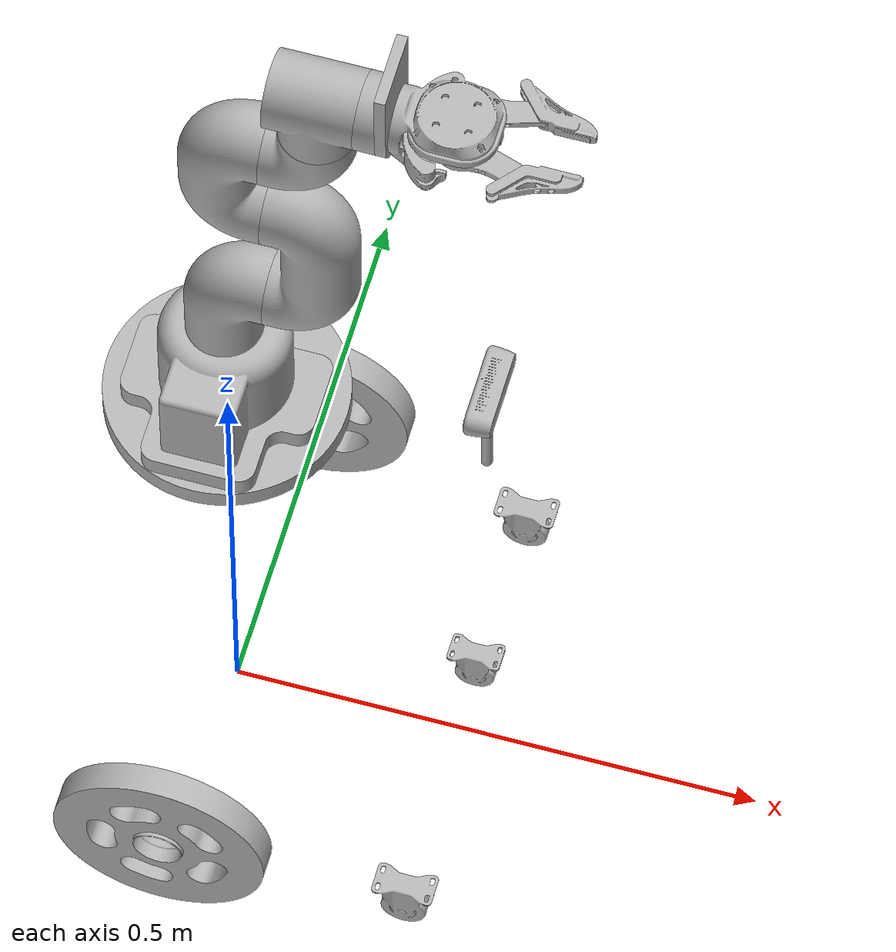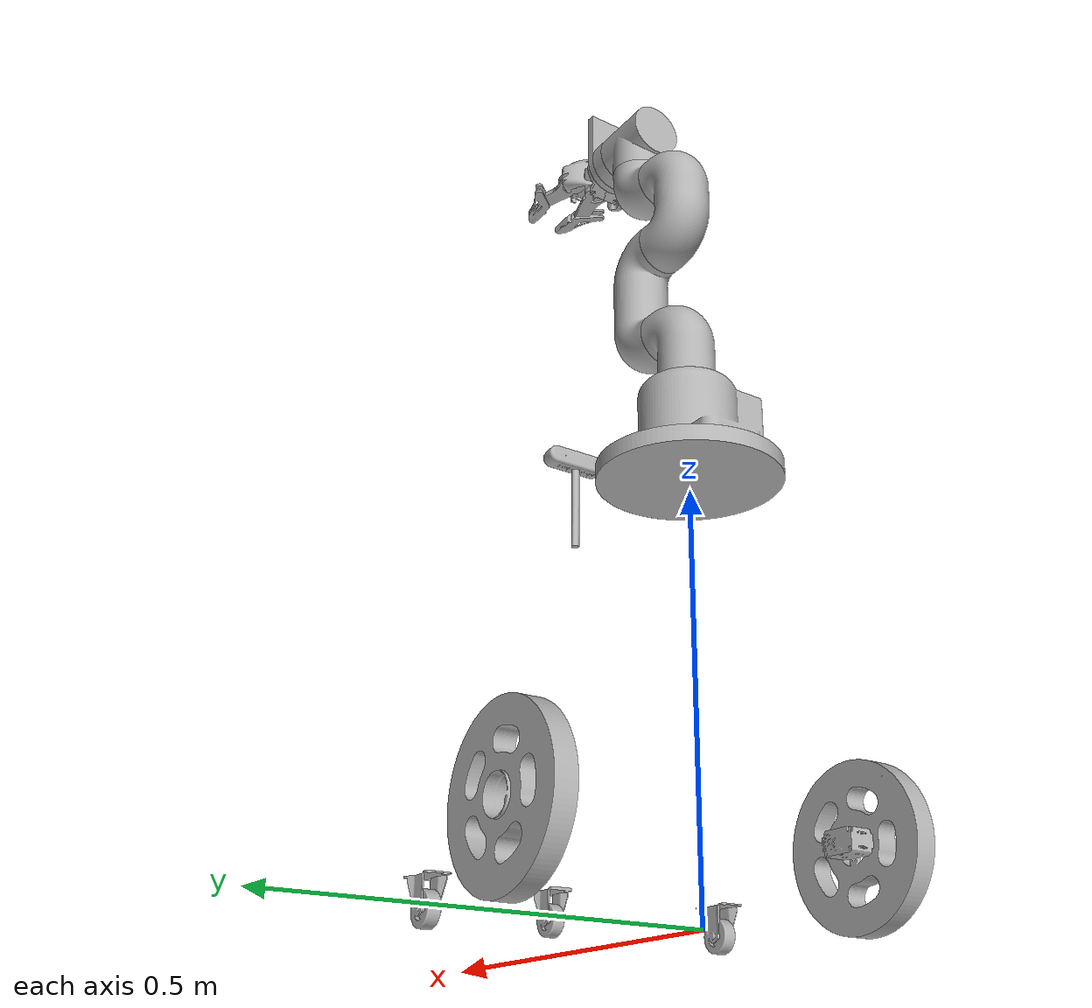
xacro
<?xml version="1.0" ?>
<robot name="turtlebot3" xmlns:xacro="http://www.ros.org/wiki/xacro">

<material name="silver">
  <color rgba="0.700 0.700 0.700 1.000"/>
</material>

<link name="base_footprint"/>

<joint name="base_joint" type="fixed">
  <parent link="base_footprint"/>
  <child link="base_link"/>
  <origin xyz="0.0 0.0 0.010" rpy="0 0 0"/>
</joint>

<link name="base_link">
  <inertial>
    <origin xyz="8.368053381880458e-07 -1.7610424648219707e-05 0.27252999856366134" rpy="0 0 0"/>
    <mass value="8.34475627832778"/>
    <inertia ixx="0.41971" iyy="0.457952" izz="0.39007" ixy="-1.6e-05" iyz="-2e-06" ixz="-0.0"/>
  </inertial>
  <visual>
    <origin xyz="0 0 0" rpy="0 0 0"/>
    <geometry>
      <mesh filename="file://$(find turtlebot3_description)/meshes/base_link.stl" scale="0.001 0.001 0.001"/>
    </geometry>
    <material name="silver"/>
  </visual>
  <collision>
    <origin xyz="0 0 0" rpy="0 0 0"/>
    <geometry>
      <mesh filename="file://$(find turtlebot3_description)/meshes/base_link.stl" scale="0.001 0.001 0.001"/>
    </geometry>
  </collision>
</link>

<link name="caster_1">
  <inertial>
    <origin xyz="-0.02857352949264516 -0.01151471005681412 -0.03043828110848307" rpy="0 0 0"/>
    <mass value="0.18931422070235698"/>
    <inertia ixx="5.5e-05" iyy="7.4e-05" izz="3.3e-05" ixy="-0.0" iyz="0.0" ixz="0.0"/>
  </inertial>
  <visual>
    <origin xyz="-0.25 -0.2169 -0.058" rpy="0 0 0"/>
    <geometry>
      <mesh filename="file://$(find turtlebot3_description)/meshes/caster_1.stl" scale="0.001 0.001 0.001"/>
    </geometry>
    <material name="silver"/>
  </visual>
  <collision>
    <origin xyz="-0.25 -0.2169 -0.058" rpy="0 0 0"/>
    <geometry>
      <mesh filename="file://$(find turtlebot3_description)/meshes/caster_1.stl" scale="0.001 0.001 0.001"/>
    </geometry>
  </collision>
</link>

<link name="caster_2">
  <inertial>
    <origin xyz="-0.028573529492625066 0.011514701707892594 -0.03043828110848334" rpy="0 0 0"/>
    <mass value="0.18931422070235698"/>
    <inertia ixx="5.5e-05" iyy="7.4e-05" izz="3.3e-05" ixy="-0.0" iyz="0.0" ixz="0.0"/>
  </inertial>
  <visual>
    <origin xyz="-0.25 0.2169 -0.058" rpy="0 0 0"/>
    <geometry>
      <mesh filename="file://$(find turtlebot3_description)/meshes/caster_2.stl" scale="0.001 0.001 0.001"/>
    </geometry>
    <material name="silver"/>
  </visual>
  <collision>
    <origin xyz="-0.25 0.2169 -0.058" rpy="0 0 0"/>
    <geometry>
      <mesh filename="file://$(find turtlebot3_description)/meshes/caster_2.stl" scale="0.001 0.001 0.001"/>
    </geometry>
  </collision>
</link>

<link name="caster_3">
  <inertial>
    <origin xyz="0.028573529330904346 0.01151470170789251 -0.0304382811084827" rpy="0 0 0"/>
    <mass value="0.18931422070235698"/>
    <inertia ixx="5.5e-05" iyy="7.4e-05" izz="3.3e-05" ixy="-0.0" iyz="0.0" ixz="0.0"/>
  </inertial>
  <visual>
    <origin xyz="0.25 0.2169 -0.058" rpy="0 0 0"/>
    <geometry>
      <mesh filename="file://$(find turtlebot3_description)/meshes/caster_3.stl" scale="0.001 0.001 0.001"/>
    </geometry>
    <material name="silver"/>
  </visual>
  <collision>
    <origin xyz="0.25 0.2169 -0.058" rpy="0 0 0"/>
    <geometry>
      <mesh filename="file://$(find turtlebot3_description)/meshes/caster_3.stl" scale="0.001 0.001 0.001"/>
    </geometry>
  </collision>
</link>

<link name="caster_4">
  <inertial>
    <origin xyz="0.02857352933088425 -0.01151471005681412 -0.030438281108482977" rpy="0 0 0"/>
    <mass value="0.18931422070235698"/>
    <inertia ixx="5.5e-05" iyy="7.4e-05" izz="3.3e-05" ixy="-0.0" iyz="0.0" ixz="0.0"/>
  </inertial>
  <visual>
    <origin xyz="0.25 -0.2169 -0.058" rpy="0 0 0"/>
    <geometry>
      <mesh filename="file://$(find turtlebot3_description)/meshes/caster_4.stl" scale="0.001 0.001 0.001"/>
    </geometry>
    <material name="silver"/>
  </visual>
  <collision>
    <origin xyz="0.25 -0.2169 -0.058" rpy="0 0 0"/>
    <geometry>
      <mesh filename="file://$(find turtlebot3_description)/meshes/caster_4.stl" scale="0.001 0.001 0.001"/>
    </geometry>
  </collision>
</link>

<link name="XL430_base_right">
  <inertial>
    <origin xyz="0.015671495929223667 -0.00632193052184804 0.014483637367895638" rpy="0 0 0"/>
    <mass value="0.3239556630537195"/>
    <inertia ixx="5e-05" iyy="7.9e-05" izz="8.6e-05" ixy="0.0" iyz="0.0" ixz="-0.0"/>
  </inertial>
  <visual>
    <origin xyz="0.028 0.198 -0.0855" rpy="0 0 0"/>
    <geometry>
      <mesh filename="file://$(find turtlebot3_description)/meshes/XL430_base_right.stl" scale="0.001 0.001 0.001"/>
    </geometry>
    <material name="silver"/>
  </visual>
  <collision>
    <origin xyz="0.028 0.198 -0.0855" rpy="0 0 0"/>
    <geometry>
      <mesh filename="file://$(find turtlebot3_description)/meshes/XL430_base_right.stl" scale="0.001 0.001 0.001"/>
    </geometry>
  </collision>
</link>

<link name="XL430_motor_right">
  <inertial>
    <origin xyz="-3.045443770730309e-06 -0.002385176775222958 6.646072581162343e-14" rpy="0 0 0"/>
    <mass value="0.011770865349524429"/>
    <inertia ixx="0.0" iyy="1e-06" izz="0.0" ixy="0.0" iyz="0.0" ixz="-0.0"/>
  </inertial>
  <visual>
    <origin xyz="-0.0003 0.2188 -0.1" rpy="0 0 0"/>
    <geometry>
      <mesh filename="file://$(find turtlebot3_description)/meshes/XL430_motor_right.stl" scale="0.001 0.001 0.001"/>
    </geometry>
    <material name="silver"/>
  </visual>
  <collision>
    <origin xyz="-0.0003 0.2188 -0.1" rpy="0 0 0"/>
    <geometry>
      <mesh filename="file://$(find turtlebot3_description)/meshes/XL430_motor_right.stl" scale="0.001 0.001 0.001"/>
    </geometry>
  </collision>
</link>

<link name="wheel_right">
  <inertial>
    <origin xyz="-0.005656851380657197 -0.013437856519626423 -0.005656982696146395" rpy="0 0 0"/>
    <mass value="5.068160827641181"/>
    <inertia ixx="0.014881" iyy="0.029142" izz="0.014881" ixy="0.0" iyz="0.0" ixz="-0.0"/>
  </inertial>
  <visual>
    <origin xyz="-0.005957 0.2233 -0.105657" rpy="0 0 0"/>
    <geometry>
      <mesh filename="file://$(find turtlebot3_description)/meshes/wheel_right.stl" scale="0.001 0.001 0.001"/>
    </geometry>
    <material name="silver"/>
  </visual>
  <collision>
    <origin xyz="-0.005957 0.2233 -0.105657" rpy="0 0 0"/>
    <geometry>
      <mesh filename="file://$(find turtlebot3_description)/meshes/wheel_right.stl" scale="0.001 0.001 0.001"/>
    </geometry>
  </collision>
</link>

<link name="plate">
  <inertial>
    <origin xyz="2.349014429479716e-17 2.217469621428852e-14 0.009999999999990572" rpy="0 0 0"/>
    <mass value="6.078748022419618"/>
    <inertia ixx="0.018932" iyy="0.018932" izz="0.037458" ixy="0.0" iyz="0.0" ixz="0.0"/>
  </inertial>
  <visual>
    <origin xyz="-0.0 0.0 -0.501" rpy="0 0 0"/>
    <geometry>
      <mesh filename="file://$(find turtlebot3_description)/meshes/plate.stl" scale="0.001 0.001 0.001"/>
    </geometry>
    <material name="silver"/>
  </visual>
  <collision>
    <origin xyz="-0.0 0.0 -0.501" rpy="0 0 0"/>
    <geometry>
      <mesh filename="file://$(find turtlebot3_description)/meshes/plate.stl" scale="0.001 0.001 0.001"/>
    </geometry>
  </collision>
</link>

<link name="cobot_body">
  <inertial>
    <origin xyz="-1.3994638513012427e-08 -0.013751224256373267 0.04886454507233462" rpy="0 0 0"/>
    <mass value="12.899764355948896"/>
    <inertia ixx="0.033823" iyy="0.028162" izz="0.035033" ixy="0.0" iyz="-0.000755" ixz="0.0"/>
  </inertial>
  <visual>
    <origin xyz="-0.0 -0.0 -0.521" rpy="0 0 0"/>
    <geometry>
      <mesh filename="file://$(find turtlebot3_description)/meshes/cobot_body.stl" scale="0.001 0.001 0.001"/>
    </geometry>
    <material name="silver"/>
  </visual>
  <collision>
    <origin xyz="-0.0 -0.0 -0.521" rpy="0 0 0"/>
    <geometry>
      <mesh filename="file://$(find turtlebot3_description)/meshes/cobot_body.stl" scale="0.001 0.001 0.001"/>
    </geometry>
  </collision>
</link>

<link name="baseArm">
  <inertial>
    <origin xyz="0.0068967662247284124 2.2561127161268677e-14 0.05549018686904705" rpy="0 0 0"/>
    <mass value="3.4735206294395446"/>
    <inertia ixx="0.004461" iyy="0.004757" izz="0.002424" ixy="0.0" iyz="0.0" ixz="-0.000777"/>
  </inertial>
  <visual>
    <origin xyz="0.0 -0.0 -0.631" rpy="0 0 0"/>
    <geometry>
      <mesh filename="file://$(find turtlebot3_description)/meshes/baseArm.stl" scale="0.001 0.001 0.001"/>
    </geometry>
    <material name="silver"/>
  </visual>
  <collision>
    <origin xyz="0.0 -0.0 -0.631" rpy="0 0 0"/>
    <geometry>
      <mesh filename="file://$(find turtlebot3_description)/meshes/baseArm.stl" scale="0.001 0.001 0.001"/>
    </geometry>
  </collision>
</link>

<link name="lowerArm">
  <inertial>
    <origin xyz="0.03690658575566909 2.2563486026873027e-14 0.06799999999999196" rpy="0 0 0"/>
    <mass value="5.91988968680626"/>
    <inertia ixx="0.0188" iyy="0.019335" izz="0.004161" ixy="0.0" iyz="0.0" ixz="0.0"/>
  </inertial>
  <visual>
    <origin xyz="-0.045 -0.0 -0.716" rpy="0 0 0"/>
    <geometry>
      <mesh filename="file://$(find turtlebot3_description)/meshes/lowerArm.stl" scale="0.001 0.001 0.001"/>
    </geometry>
    <material name="silver"/>
  </visual>
  <collision>
    <origin xyz="-0.045 -0.0 -0.716" rpy="0 0 0"/>
    <geometry>
      <mesh filename="file://$(find turtlebot3_description)/meshes/lowerArm.stl" scale="0.001 0.001 0.001"/>
    </geometry>
  </collision>
</link>

<link name="upperArm">
  <inertial>
    <origin xyz="-0.035022688252996176 2.6167507160751738e-14 0.04949999999999111" rpy="0 0 0"/>
    <mass value="4.802107093668197"/>
    <inertia ixx="0.01014" iyy="0.010584" izz="0.003386" ixy="-0.0" iyz="-0.0" ixz="-0.0"/>
  </inertial>
  <visual>
    <origin xyz="-0.045 -0.0 -0.852" rpy="0 0 0"/>
    <geometry>
      <mesh filename="file://$(find turtlebot3_description)/meshes/upperArm.stl" scale="0.001 0.001 0.001"/>
    </geometry>
    <material name="silver"/>
  </visual>
  <collision>
    <origin xyz="-0.045 -0.0 -0.852" rpy="0 0 0"/>
    <geometry>
      <mesh filename="file://$(find turtlebot3_description)/meshes/upperArm.stl" scale="0.001 0.001 0.001"/>
    </geometry>
  </collision>
</link>

<link name="pitchArm">
  <inertial>
    <origin xyz="0.0344238728691882 2.9930072914790985e-14 0.010576127130799029" rpy="0 0 0"/>
    <mass value="2.265107015236222"/>
    <inertia ixx="0.001595" iyy="0.001803" izz="0.001595" ixy="-0.0" iyz="-0.0" ixz="-0.000324"/>
  </inertial>
  <visual>
    <origin xyz="-0.045 -0.0 -0.951" rpy="0 0 0"/>
    <geometry>
      <mesh filename="file://$(find turtlebot3_description)/meshes/pitchArm.stl" scale="0.001 0.001 0.001"/>
    </geometry>
    <material name="silver"/>
  </visual>
  <collision>
    <origin xyz="-0.045 -0.0 -0.951" rpy="0 0 0"/>
    <geometry>
      <mesh filename="file://$(find turtlebot3_description)/meshes/pitchArm.stl" scale="0.001 0.001 0.001"/>
    </geometry>
  </collision>
</link>

<link name="rollArm">
  <inertial>
    <origin xyz="-4.052314039881821e-15 3.104263161282912e-14 0.04211669650612482" rpy="0 0 0"/>
    <mass value="3.029827579494103"/>
    <inertia ixx="0.0025" iyy="0.002976" izz="0.002441" ixy="0.0" iyz="-0.0" ixz="0.0"/>
  </inertial>
  <visual>
    <origin xyz="-0.09 -0.0 -0.996" rpy="0 0 0"/>
    <geometry>
      <mesh filename="file://$(find turtlebot3_description)/meshes/rollArm.stl" scale="0.001 0.001 0.001"/>
    </geometry>
    <material name="silver"/>
  </visual>
  <collision>
    <origin xyz="-0.09 -0.0 -0.996" rpy="0 0 0"/>
    <geometry>
      <mesh filename="file://$(find turtlebot3_description)/meshes/rollArm.stl" scale="0.001 0.001 0.001"/>
    </geometry>
  </collision>
</link>

<link name="gripperArm">
  <inertial>
    <origin xyz="0.009999999999995929 3.104852866283627e-14 -9.325873406851315e-15" rpy="0 0 0"/>
    <mass value="0.6042068071016569"/>
    <inertia ixx="0.00037" iyy="0.000205" izz="0.000205" ixy="0.0" iyz="0.0" ixz="-0.0"/>
  </inertial>
  <visual>
    <origin xyz="-0.13 -0.0 -1.046" rpy="0 0 0"/>
    <geometry>
      <mesh filename="file://$(find turtlebot3_description)/meshes/gripperArm.stl" scale="0.001 0.001 0.001"/>
    </geometry>
    <material name="silver"/>
  </visual>
  <collision>
    <origin xyz="-0.13 -0.0 -1.046" rpy="0 0 0"/>
    <geometry>
      <mesh filename="file://$(find turtlebot3_description)/meshes/gripperArm.stl" scale="0.001 0.001 0.001"/>
    </geometry>
  </collision>
</link>

<link name="cobot_camera">
  <inertial>
    <origin xyz="0.004999999999995952 3.105530767256797e-14 0.02345781668822733" rpy="0 0 0"/>
    <mass value="0.5631767017754145"/>
    <inertia ixx="0.000724" iyy="0.000514" izz="0.000219" ixy="0.0" iyz="-0.0" ixz="-0.0"/>
  </inertial>
  <visual>
    <origin xyz="-0.15 -0.0 -1.046" rpy="0 0 0"/>
    <geometry>
      <mesh filename="file://$(find turtlebot3_description)/meshes/cobot_camera.stl" scale="0.001 0.001 0.001"/>
    </geometry>
    <material name="silver"/>
  </visual>
  <collision>
    <origin xyz="-0.15 -0.0 -1.046" rpy="0 0 0"/>
    <geometry>
      <mesh filename="file://$(find turtlebot3_description)/meshes/cobot_camera.stl" scale="0.001 0.001 0.001"/>
    </geometry>
  </collision>
</link>

<link name="gripper_base">
  <inertial>
    <origin xyz="0.035566484314994706 -0.00017560554917522554 0.00832682194458001" rpy="0 0 0"/>
    <mass value="0.5510932173775136"/>
    <inertia ixx="0.000508" iyy="0.00049" izz="0.000702" ixy="0.0" iyz="0.0" ixz="-0.000104"/>
  </inertial>
  <visual>
    <origin xyz="-0.16 -0.0 -1.046" rpy="0 0 0"/>
    <geometry>
      <mesh filename="file://$(find turtlebot3_description)/meshes/gripper_base.stl" scale="0.001 0.001 0.001"/>
    </geometry>
    <material name="silver"/>
  </visual>
  <collision>
    <origin xyz="-0.16 -0.0 -1.046" rpy="0 0 0"/>
    <geometry>
      <mesh filename="file://$(find turtlebot3_description)/meshes/gripper_base.stl" scale="0.001 0.001 0.001"/>
    </geometry>
  </collision>
</link>

<link name="gripper_left3">
  <inertial>
    <origin xyz="0.015990426629757803 -0.012967523057076307 0.0034753903195710034" rpy="0 0 0"/>
    <mass value="0.09059526730883281"/>
    <inertia ixx="1.8e-05" iyy="3.3e-05" izz="5e-05" ixy="1.8e-05" iyz="0.0" ixz="-0.0"/>
  </inertial>
  <visual>
    <origin xyz="-0.22039 0.01846 -1.049642" rpy="0 0 0"/>
    <geometry>
      <mesh filename="file://$(find turtlebot3_description)/meshes/gripper_left3.stl" scale="0.001 0.001 0.001"/>
    </geometry>
    <material name="silver"/>
  </visual>
  <collision>
    <origin xyz="-0.22039 0.01846 -1.049642" rpy="0 0 0"/>
    <geometry>
      <mesh filename="file://$(find turtlebot3_description)/meshes/gripper_left3.stl" scale="0.001 0.001 0.001"/>
    </geometry>
  </collision>
</link>

<link name="gripper_left1">
  <inertial>
    <origin xyz="0.011053309239173692 -0.005253691764326537 0.00013660803927972864" rpy="0 0 0"/>
    <mass value="0.09307370524687981"/>
    <inertia ixx="1e-05" iyy="3.5e-05" izz="4.2e-05" ixy="-1.3e-05" iyz="0.0" ixz="0.0"/>
  </inertial>
  <visual>
    <origin xyz="-0.271438 0.051465 -1.053142" rpy="0 0 0"/>
    <geometry>
      <mesh filename="file://$(find turtlebot3_description)/meshes/gripper_left1.stl" scale="0.001 0.001 0.001"/>
    </geometry>
    <material name="silver"/>
  </visual>
  <collision>
    <origin xyz="-0.271438 0.051465 -1.053142" rpy="0 0 0"/>
    <geometry>
      <mesh filename="file://$(find turtlebot3_description)/meshes/gripper_left1.stl" scale="0.001 0.001 0.001"/>
    </geometry>
  </collision>
</link>

<link name="gripper_right3">
  <inertial>
    <origin xyz="0.015990425593987917 0.012967524435841548 0.0035248809278738413" rpy="0 0 0"/>
    <mass value="0.09059526730883281"/>
    <inertia ixx="1.8e-05" iyy="3.3e-05" izz="5e-05" ixy="-1.8e-05" iyz="0.0" ixz="0.0"/>
  </inertial>
  <visual>
    <origin xyz="-0.22039 -0.01822 -1.049642" rpy="0 0 0"/>
    <geometry>
      <mesh filename="file://$(find turtlebot3_description)/meshes/gripper_right3.stl" scale="0.001 0.001 0.001"/>
    </geometry>
    <material name="silver"/>
  </visual>
  <collision>
    <origin xyz="-0.22039 -0.01822 -1.049642" rpy="0 0 0"/>
    <geometry>
      <mesh filename="file://$(find turtlebot3_description)/meshes/gripper_right3.stl" scale="0.001 0.001 0.001"/>
    </geometry>
  </collision>
</link>

<link name="gripper_right1">
  <inertial>
    <origin xyz="0.011053308203403556 0.005253693143092229 -0.00013633679183122638" rpy="0 0 0"/>
    <mass value="0.09307370524687981"/>
    <inertia ixx="1e-05" iyy="3.5e-05" izz="4.2e-05" ixy="1.3e-05" iyz="0.0" ixz="-0.0"/>
  </inertial>
  <visual>
    <origin xyz="-0.271438 -0.051225 -1.053142" rpy="0 0 0"/>
    <geometry>
      <mesh filename="file://$(find turtlebot3_description)/meshes/gripper_right1.stl" scale="0.001 0.001 0.001"/>
    </geometry>
    <material name="silver"/>
  </visual>
  <collision>
    <origin xyz="-0.271438 -0.051225 -1.053142" rpy="0 0 0"/>
    <geometry>
      <mesh filename="file://$(find turtlebot3_description)/meshes/gripper_right1.stl" scale="0.001 0.001 0.001"/>
    </geometry>
  </collision>
</link>

<link name="camera_link">
  <inertial>
    <origin xyz="0.0015201693083259915 -5.299270958027507e-07 0.012451799923456464" rpy="0 0 0"/>
    <mass value="0.3783774808035141"/>
    <inertia ixx="0.000238" iyy="3.5e-05" izz="0.00024" ixy="-0.0" iyz="0.0" ixz="0.0"/>
  </inertial>
  <visual>
    <origin xyz="-0.24 -0.0 -0.611" rpy="0 0 0"/>
    <geometry>
      <mesh filename="file://$(find turtlebot3_description)/meshes/Intel_Realsense_D435.stl" scale="0.001 0.001 0.001"/>
    </geometry>
    <material name="silver"/>
  </visual>
  <collision>
    <origin xyz="-0.24 -0.0 -0.611" rpy="0 0 0"/>
    <geometry>
      <mesh filename="file://$(find turtlebot3_description)/meshes/Intel_Realsense_D435.stl" scale="0.001 0.001 0.001"/>
    </geometry>
  </collision>
</link>

<link name="camera_stand">
  <inertial>
    <origin xyz="8.326672684688674e-17 2.405039069677821e-14 0.05499999999999039" rpy="0 0 0"/>
    <mass value="0.06781913140936957"/>
    <inertia ixx="6.9e-05" iyy="6.9e-05" izz="1e-06" ixy="-0.0" iyz="-0.0" ixz="-0.0"/>
  </inertial>
  <visual>
    <origin xyz="-0.24 0.0 -0.501" rpy="0 0 0"/>
    <geometry>
      <mesh filename="file://$(find turtlebot3_description)/meshes/camera_stand.stl" scale="0.001 0.001 0.001"/>
    </geometry>
    <material name="silver"/>
  </visual>
  <collision>
    <origin xyz="-0.24 0.0 -0.501" rpy="0 0 0"/>
    <geometry>
      <mesh filename="file://$(find turtlebot3_description)/meshes/camera_stand.stl" scale="0.001 0.001 0.001"/>
    </geometry>
  </collision>
</link>

<link name="XL430_base_left">
  <inertial>
    <origin xyz="0.015671495929223758 0.006321930521842017 0.014516362632086596" rpy="0 0 0"/>
    <mass value="0.3239556630537195"/>
    <inertia ixx="5e-05" iyy="7.9e-05" izz="8.6e-05" ixy="-0.0" iyz="0.0" ixz="0.0"/>
  </inertial>
  <visual>
    <origin xyz="0.028 -0.198 -0.0855" rpy="0 0 0"/>
    <geometry>
      <mesh filename="file://$(find turtlebot3_description)/meshes/XL430_base_left.stl" scale="0.001 0.001 0.001"/>
    </geometry>
    <material name="silver"/>
  </visual>
  <collision>
    <origin xyz="0.028 -0.198 -0.0855" rpy="0 0 0"/>
    <geometry>
      <mesh filename="file://$(find turtlebot3_description)/meshes/XL430_base_left.stl" scale="0.001 0.001 0.001"/>
    </geometry>
  </collision>
</link>

<link name="XL430_motor_left">
  <inertial>
    <origin xyz="-3.0454437706458498e-06 0.0023851767752167963 -8.416878305439468e-14" rpy="0 0 0"/>
    <mass value="0.011770865349524429"/>
    <inertia ixx="0.0" iyy="1e-06" izz="0.0" ixy="-0.0" iyz="0.0" ixz="0.0"/>
  </inertial>
  <visual>
    <origin xyz="-0.0003 -0.2188 -0.1" rpy="0 0 0"/>
    <geometry>
      <mesh filename="file://$(find turtlebot3_description)/meshes/XL430_motor_left.stl" scale="0.001 0.001 0.001"/>
    </geometry>
    <material name="silver"/>
  </visual>
  <collision>
    <origin xyz="-0.0003 -0.2188 -0.1" rpy="0 0 0"/>
    <geometry>
      <mesh filename="file://$(find turtlebot3_description)/meshes/XL430_motor_left.stl" scale="0.001 0.001 0.001"/>
    </geometry>
  </collision>
</link>

<link name="wheel_left">
  <inertial>
    <origin xyz="-0.00565685138065711 0.01343785651962029 -0.0056570173038905935" rpy="0 0 0"/>
    <mass value="5.068160827641181"/>
    <inertia ixx="0.014881" iyy="0.029142" izz="0.014881" ixy="-0.0" iyz="0.0" ixz="0.0"/>
  </inertial>
  <visual>
    <origin xyz="-0.005957 -0.2233 -0.105657" rpy="0 0 0"/>
    <geometry>
      <mesh filename="file://$(find turtlebot3_description)/meshes/wheel_left.stl" scale="0.001 0.001 0.001"/>
    </geometry>
    <material name="silver"/>
  </visual>
  <collision>
    <origin xyz="-0.005957 -0.2233 -0.105657" rpy="0 0 0"/>
    <geometry>
      <mesh filename="file://$(find turtlebot3_description)/meshes/wheel_left.stl" scale="0.001 0.001 0.001"/>
    </geometry>
  </collision>
</link>

<joint name="Rigid 5" type="fixed">
  <origin xyz="0.25 0.2169 0.058" rpy="0 0 0"/>
  <parent link="base_link"/>
  <child link="caster_1"/>
</joint>

<joint name="Rigid 6" type="fixed">
  <origin xyz="0.25 -0.2169 0.058" rpy="0 0 0"/>
  <parent link="base_link"/>
  <child link="caster_2"/>
</joint>

<joint name="Rigid 7" type="fixed">
  <origin xyz="-0.25 -0.2169 0.058" rpy="0 0 0"/>
  <parent link="base_link"/>
  <child link="caster_3"/>
</joint>

<joint name="Rigid 8" type="fixed">
  <origin xyz="-0.25 0.2169 0.058" rpy="0 0 0"/>
  <parent link="base_link"/>
  <child link="caster_4"/>
</joint>

<joint name="Rigid 11" type="fixed">
  <origin xyz="-0.028 -0.198 0.0855" rpy="0 0 0"/>
  <parent link="base_link"/>
  <child link="XL430_base_right"/>
</joint>

<joint name="wheel_left_joint" type="continuous">
  <origin xyz="0.0283 0.0208 0.0145" rpy="0 0 0"/>
  <parent link="XL430_base_left"/>
  <child link="XL430_motor_left"/>
  <axis xyz="0.0 1.0 -0.0"/>
</joint>

<joint name="wheel_right_joint" type="continuous">
  <origin xyz="0.0283 -0.0208 0.0145" rpy="0 0 0"/>
  <parent link="XL430_base_right"/>
  <child link="XL430_motor_right"/>
  <axis xyz="-0.0 -1.0 0.0"/>
</joint>

<joint name="Rigid 14" type="fixed">
  <origin xyz="0.005657 -0.0045 0.005657" rpy="0 0 0"/>
  <parent link="XL430_motor_right"/>
  <child link="wheel_right"/>
</joint>

<joint name="Rigid 21" type="fixed">
  <origin xyz="0.0 0.0 0.501" rpy="0 0 0"/>
  <parent link="base_link"/>
  <child link="plate"/>
</joint>

<joint name="Rigid 23" type="fixed">
  <origin xyz="0.0 0.0 0.02" rpy="0 0 0"/>
  <parent link="plate"/>
  <child link="cobot_body"/>
</joint>

<joint name="Revolute 1" type="revolute">
  <origin xyz="-0.0 0.0 0.11" rpy="0 0 0"/>
  <parent link="cobot_body"/>
  <child link="baseArm"/>
  <axis xyz="-0.0 -0.0 1.0"/>
  <limit upper="2.792527" lower="-2.792527" effort="100" velocity="100"/>
</joint>

<joint name="Revolute 2" type="revolute">
  <origin xyz="0.045 0.0 0.085" rpy="0 0 0"/>
  <parent link="baseArm"/>
  <child link="lowerArm"/>
  <axis xyz="1.0 -0.0 0.0"/>
  <limit upper="2.792527" lower="-2.792527" effort="100" velocity="100"/>
</joint>

<joint name="Revolute 3" type="revolute">
  <origin xyz="0.0 0.0 0.136" rpy="0 0 0"/>
  <parent link="lowerArm"/>
  <child link="upperArm"/>
  <axis xyz="-1.0 0.0 -0.0"/>
  <limit upper="2.792527" lower="-2.792527" effort="100" velocity="100"/>
</joint>

<joint name="Revolute 4" type="revolute">
  <origin xyz="0.0 0.0 0.099" rpy="0 0 0"/>
  <parent link="upperArm"/>
  <child link="pitchArm"/>
  <axis xyz="1.0 -0.0 -0.0"/>
  <limit upper="2.792527" lower="-2.792527" effort="100" velocity="100"/>
</joint>

<joint name="Revolute 5" type="revolute">
  <origin xyz="0.045 0.0 0.045" rpy="0 0 0"/>
  <parent link="pitchArm"/>
  <child link="rollArm"/>
  <axis xyz="0.0 0.0 1.0"/>
  <limit upper="2.792527" lower="-2.792527" effort="100" velocity="100"/>
</joint>

<joint name="Revolute 6" type="revolute">
  <origin xyz="0.04 0.0 0.05" rpy="0 0 0"/>
  <parent link="rollArm"/>
  <child link="gripperArm"/>
  <axis xyz="1.0 -0.0 0.0"/>
  <limit upper="2.792527" lower="-2.792527" effort="100" velocity="100"/>
</joint>

<joint name="Rigid 30" type="fixed">
  <origin xyz="0.02 0.0 0.0" rpy="0 0 0"/>
  <parent link="gripperArm"/>
  <child link="cobot_camera"/>
</joint>

<joint name="Rigid 31" type="fixed">
  <origin xyz="0.01 0.0 0.0" rpy="0 0 0"/>
  <parent link="cobot_camera"/>
  <child link="gripper_base"/>
</joint>

<joint name="gripper_controller" type="revolute">
  <origin xyz="0.06039 0.01822 0.003642" rpy="0 0 -0.42"/> <!-- change rpy y to -0.42-->
  <parent link="gripper_base"/>
  <child link="gripper_right3"/>
  <axis xyz="-0.0 -0.0 -1.0"/>
  <limit upper="0.3" lower="-0.7" effort="100" velocity="100"/> <!-- change upper to 0.3 and lower to -0.7-->
</joint>

<joint name="Revolute 36" type="revolute">
  <origin xyz="0.051048 0.033005 0.0035" rpy="0 0 0.42"/> <!-- change rpy y to 0.42-->
  <parent link="gripper_right3"/>
  <child link="gripper_right1"/>
  <axis xyz="0.0 -0.0 1.0"/>
  <limit upper="0.7" lower="-0.3" effort="100" velocity="100"/> <!-- change upper to 0.7 and lower to -0.3-->
  <mimic joint="gripper_controller" multiplier="1" offset="0"/> <!-- add mimic and change multiplier to -1-->
</joint>

<joint name="Revolute 33" type="revolute">
  <origin xyz="0.06039 -0.01846 0.003642" rpy="0 0 0.42"/> <!-- change rpy y to 0.42-->
  <parent link="gripper_base"/>
  <child link="gripper_left3"/>
  <axis xyz="-0.0 -0.0 -1.0"/>
  <limit upper="0.7" lower="-0.3" effort="100" velocity="100"/> <!-- change upper to 0.7 and lower to -0.3-->
  <mimic joint="gripper_controller" multiplier="-1" offset="0"/> <!-- add mimic and change multiplier to -1-->
</joint>

<joint name="Revolute 34" type="revolute">
  <origin xyz="0.051048 -0.033005 0.0035" rpy="0 0 -0.42"/> <!-- change rpy y to -0.42-->
  <parent link="gripper_left3"/>
  <child link="gripper_left1"/>
  <axis xyz="0.0 0.0 1.0"/>
  <limit upper="0.3" lower="-0.7" effort="100" velocity="100"/> <!-- change upper to 0.3 and lower to -0.7-->
  <mimic joint="gripper_controller" multiplier="-1" offset="0"/> <!-- add mimic and change multiplier to 1-->
</joint>

<joint name="Rigid 39" type="fixed">
  <origin xyz="0.0 0.0 0.11" rpy="0 0 0"/>
  <parent link="camera_stand"/>
  <child link="camera_link"/>
</joint>

<joint name="Rigid 40" type="fixed">
  <origin xyz="0.24 0.0 0.501" rpy="0 0 0"/>
  <parent link="base_link"/>
  <child link="camera_stand"/>
</joint>

<joint name="Rigid 42" type="fixed">
  <origin xyz="-0.028 0.198 0.0855" rpy="0 0 0"/>
  <parent link="base_link"/>
  <child link="XL430_base_left"/>
</joint>

<joint name="Rigid 44" type="fixed">
  <origin xyz="0.005657 0.0045 0.005657" rpy="0 0 0"/>
  <parent link="XL430_motor_left"/>
  <child link="wheel_left"/>
</joint>

</robot>
